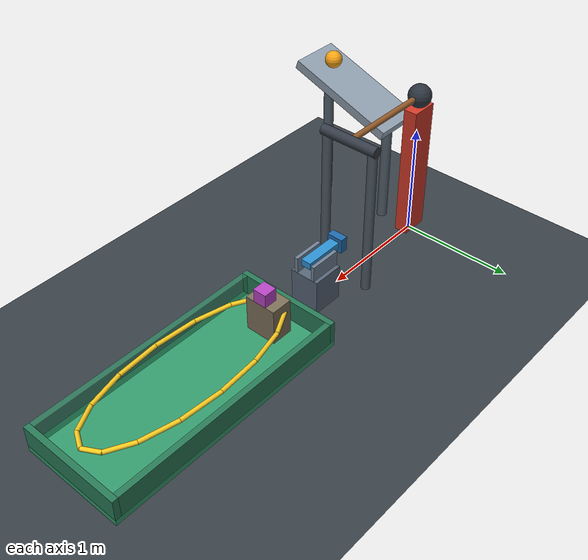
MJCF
<mujoco model="gravity_chain_reaction">
  <compiler angle="radian" inertiafromgeom="true"/>
  <option timestep="0.002" gravity="0 0 -9.81" integrator="implicitfast" iterations="100" cone="elliptic"/>
  <size njmax="2000" nconmax="400"/>
  <visual>
    <headlight ambient="0.45 0.45 0.45" diffuse="0.75 0.75 0.75" specular="0.2 0.2 0.2"/>
    <global azimuth="135" elevation="-22"/>
  </visual>

  <worldbody>
    <light name="overhead_light" pos="1.5 -2 5" dir="0 0 -1" directional="true"/>
    <camera name="overview" pos="4.8 -6 3.5" xyaxes="0.88 0.48 0 -0.20 0.37 0.91"/>

    <geom name="floor" type="plane" size="8 8 0.1" rgba="0.22 0.25 0.28 1" friction="1.0 0.03 0.03" condim="6" solref="0.008 1"/>

    <!-- The ball's initial contact point is 0.8 m uphill from the ramp's lower edge. -->
    <body name="ramp" pos="0 -0.663527 1.133422" quat="0.984807753 -0.173648178 0 0">
      <geom name="ramp_surface" type="box" size="0.22 0.50 0.04" rgba="0.55 0.61 0.67 1" friction="0.8 0.002 0.001" condim="6" solref="0.008 1"/>
    </body>

    <body name="ramp_stands">
      <geom name="ramp_stands_upper" type="cylinder" pos="0 -0.95 0.60" size="0.045 0.60" rgba="0.32 0.37 0.42 1"/>
      <geom name="ramp_stands_lower" type="cylinder" pos="0 -0.30 0.48" size="0.045 0.48" rgba="0.32 0.37 0.42 1"/>
    </body>

    <body name="ball" pos="0 -0.906103 1.344093">
      <freejoint name="ball_free"/>
      <geom name="ball_sphere" type="sphere" size="0.075" mass="0.50" rgba="0.96 0.63 0.08 1" friction="0.7 0.003 0.001" condim="6" solref="0.008 1"/>
    </body>

    <!-- The light sliding pedestal supports the initially horizontal hammer. -->
    <body name="prop" pos="0 0 0">
      <joint name="prop_slide" type="slide" axis="0 1 0" limited="true" range="0 0.80" damping="0.025" frictionloss="0.01"/>
      <geom name="prop_pedestal" type="box" pos="0 0 0.625" size="0.12 0.06 0.605" mass="0.14" rgba="0.83 0.23 0.16 1" friction="0.005 0.0001 0.0001" solref="0.008 1"/>
    </body>

    <body name="hammer_mount">
      <geom name="hammer_mount_left_post" type="cylinder" pos="0.9 -0.22 0.665" size="0.04 0.665" rgba="0.30 0.34 0.39 1"/>
      <geom name="hammer_mount_right_post" type="cylinder" pos="0.9 0.22 0.665" size="0.04 0.665" rgba="0.30 0.34 0.39 1"/>
      <geom name="hammer_mount_axle" type="cylinder" pos="0.9 0 1.33" quat="0.707106781 0.707106781 0 0" size="0.045 0.26" rgba="0.20 0.23 0.27 1" contype="0" conaffinity="0"/>
    </body>

    <body name="hammer" pos="0.9 0 1.33">
      <joint name="hammer_hinge" type="hinge" axis="0 -1 0" limited="true" range="0 2.15" damping="0.015" frictionloss="0.005"/>
      <geom name="hammer_handle" type="capsule" fromto="0 0 0 -0.9 0 0" size="0.025" mass="0.15" rgba="0.57 0.35 0.16 1" friction="0.01 0.0001 0.0001" solref="0.008 1"/>
      <geom name="hammer_head" type="sphere" pos="-0.9 0 0" size="0.10" mass="1.60" rgba="0.17 0.20 0.24 1" friction="0.01 0.0001 0.0001" solref="0.008 1"/>
    </body>

    <!-- The guide ends at x=1.42; the receiving platform starts at x=1.74. -->
    <body name="peg_guide">
      <geom name="peg_guide_base" type="box" pos="1.28 0 0.16" size="0.14 0.13 0.16" rgba="0.34 0.40 0.47 1"/>
      <geom name="peg_guide_near_rail" type="box" pos="1.28 -0.085 0.39" size="0.14 0.015 0.07" rgba="0.44 0.51 0.59 1"/>
      <geom name="peg_guide_far_rail" type="box" pos="1.28 0.085 0.39" size="0.14 0.015 0.07" rgba="0.44 0.51 0.59 1"/>
    </body>

    <body name="peg" pos="0 0 0">
      <joint name="peg_slide" type="slide" axis="1 0 0" limited="true" range="0 0.95" damping="0.04" frictionloss="0.015"/>
      <geom name="peg_shaft" type="box" pos="1.20 0 0.43" size="0.20 0.045 0.03" mass="0.10" rgba="0.18 0.57 0.83 1" friction="0.2 0.001 0.001" solref="0.008 1"/>
      <geom name="peg_striking_head" type="box" pos="1.015 0 0.43" size="0.035 0.07 0.065" mass="0.12" rgba="0.12 0.42 0.68 1" friction="0.2 0.001 0.001" solref="0.008 1"/>
    </body>

    <body name="launch_platform">
      <geom name="launch_platform_pedestal" type="box" pos="1.835 0 0.185" size="0.095 0.14 0.185" rgba="0.49 0.44 0.35 1" friction="0.45 0.003 0.001" solref="0.008 1"/>
    </body>

    <body name="block" pos="1.87 0 0.43">
      <freejoint name="block_free"/>
      <geom name="block_payload" type="box" size="0.06 0.06 0.06" mass="0.25" rgba="0.72 0.27 0.77 1" friction="0.8 0.01 0.002" condim="6" solref="0.008 1"/>
    </body>

    <!-- A horizontal elliptical hoop leaves an unobstructed drop aperture. -->
    <body name="hoop" pos="0 0 0.275">
      <geom name="hoop_segment_01" type="capsule" fromto="3.64 0 0 3.566924 0.130112 0" size="0.018" rgba="0.96 0.78 0.12 1"/>
      <geom name="hoop_segment_02" type="capsule" fromto="3.566924 0.130112 0 3.358823 0.240416 0" size="0.018" rgba="0.96 0.78 0.12 1"/>
      <geom name="hoop_segment_03" type="capsule" fromto="3.358823 0.240416 0 3.047376 0.314119 0" size="0.018" rgba="0.96 0.78 0.12 1"/>
      <geom name="hoop_segment_04" type="capsule" fromto="3.047376 0.314119 0 2.68 0.34 0" size="0.018" rgba="0.96 0.78 0.12 1"/>
      <geom name="hoop_segment_05" type="capsule" fromto="2.68 0.34 0 2.312624 0.314119 0" size="0.018" rgba="0.96 0.78 0.12 1"/>
      <geom name="hoop_segment_06" type="capsule" fromto="2.312624 0.314119 0 2.001177 0.240416 0" size="0.018" rgba="0.96 0.78 0.12 1"/>
      <geom name="hoop_segment_07" type="capsule" fromto="2.001177 0.240416 0 1.793076 0.130112 0" size="0.018" rgba="0.96 0.78 0.12 1"/>
      <geom name="hoop_segment_08" type="capsule" fromto="1.793076 0.130112 0 1.72 0 0" size="0.018" rgba="0.96 0.78 0.12 1"/>
      <geom name="hoop_segment_09" type="capsule" fromto="1.72 0 0 1.793076 -0.130112 0" size="0.018" rgba="0.96 0.78 0.12 1"/>
      <geom name="hoop_segment_10" type="capsule" fromto="1.793076 -0.130112 0 2.001177 -0.240416 0" size="0.018" rgba="0.96 0.78 0.12 1"/>
      <geom name="hoop_segment_11" type="capsule" fromto="2.001177 -0.240416 0 2.312624 -0.314119 0" size="0.018" rgba="0.96 0.78 0.12 1"/>
      <geom name="hoop_segment_12" type="capsule" fromto="2.312624 -0.314119 0 2.68 -0.34 0" size="0.018" rgba="0.96 0.78 0.12 1"/>
      <geom name="hoop_segment_13" type="capsule" fromto="2.68 -0.34 0 3.047376 -0.314119 0" size="0.018" rgba="0.96 0.78 0.12 1"/>
      <geom name="hoop_segment_14" type="capsule" fromto="3.047376 -0.314119 0 3.358823 -0.240416 0" size="0.018" rgba="0.96 0.78 0.12 1"/>
      <geom name="hoop_segment_15" type="capsule" fromto="3.358823 -0.240416 0 3.566924 -0.130112 0" size="0.018" rgba="0.96 0.78 0.12 1"/>
      <geom name="hoop_segment_16" type="capsule" fromto="3.566924 -0.130112 0 3.64 0 0" size="0.018" rgba="0.96 0.78 0.12 1"/>
    </body>

    <body name="cup" pos="2.68 0 0">
      <geom name="cup_bottom" type="box" pos="0 0 0.025" size="1.085 0.46 0.025" rgba="0.20 0.61 0.43 1" friction="1.0 0.02 0.02" condim="6" solref="0.008 1"/>
      <geom name="cup_left_wall" type="box" pos="-1.06 0 0.145" size="0.025 0.46 0.095" rgba="0.16 0.48 0.34 1" friction="1.0 0.02 0.02" condim="6" solref="0.008 1"/>
      <geom name="cup_right_wall" type="box" pos="1.06 0 0.145" size="0.025 0.46 0.095" rgba="0.16 0.48 0.34 1" friction="1.0 0.02 0.02" condim="6" solref="0.008 1"/>
      <geom name="cup_near_wall" type="box" pos="0 -0.435 0.145" size="1.035 0.025 0.095" rgba="0.20 0.61 0.43 0.65" friction="1.0 0.02 0.02" condim="6" solref="0.008 1"/>
      <geom name="cup_far_wall" type="box" pos="0 0.435 0.145" size="1.035 0.025 0.095" rgba="0.16 0.48 0.34 1" friction="1.0 0.02 0.02" condim="6" solref="0.008 1"/>
    </body>
  </worldbody>

  <keyframe>
    <key name="start" qpos="0 -0.906103 1.344093 1 0 0 0 0 0 0 1.87 0 0.43 1 0 0 0"/>
  </keyframe>
</mujoco>
